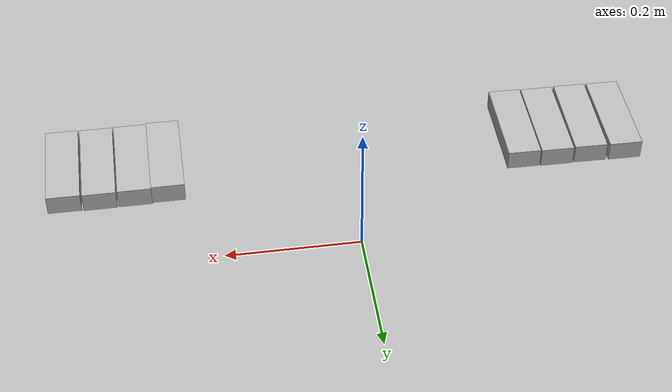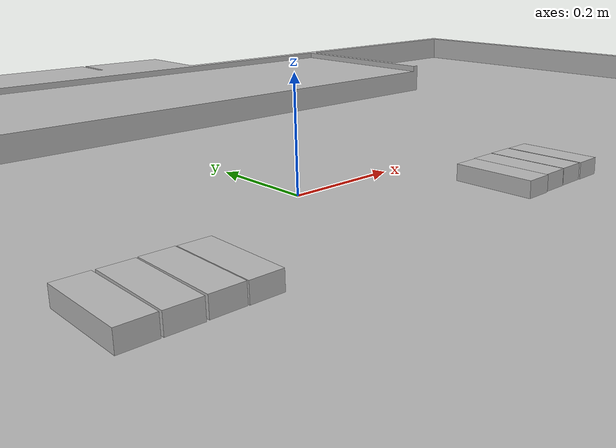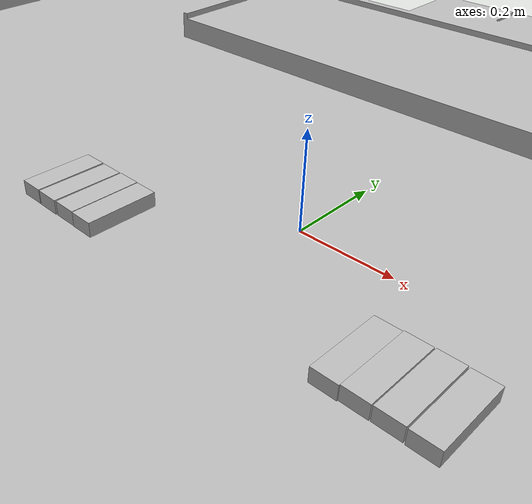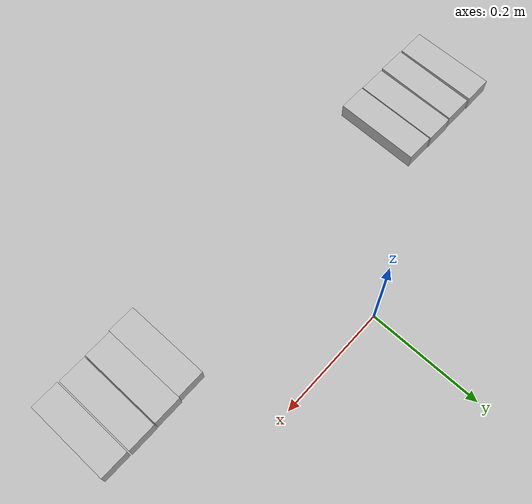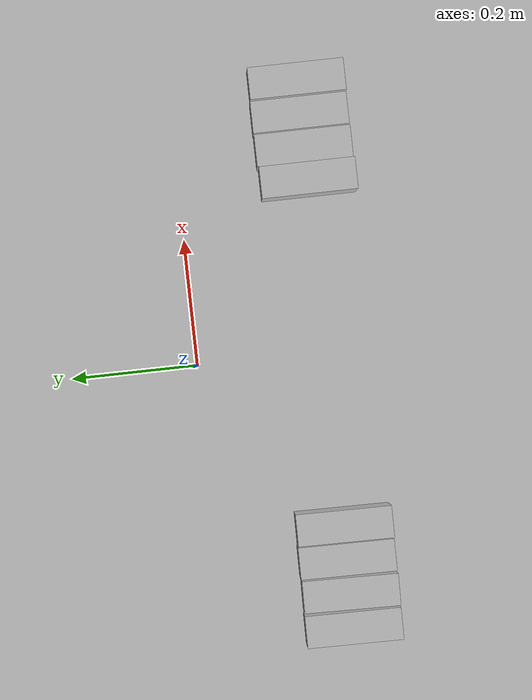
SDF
<sdf version='1.10'>
  <world name='empty'>
    <physics name='1ms' type='ignored'>
      <max_step_size>0.001</max_step_size>
      <real_time_factor>1</real_time_factor>
      <real_time_update_rate>1000</real_time_update_rate>
    </physics>
    <plugin name='gz::sim::systems::Physics' filename='gz-sim-physics-system'/>
    <plugin name='gz::sim::systems::UserCommands' filename='gz-sim-user-commands-system'/>
    <plugin name='gz::sim::systems::SceneBroadcaster' filename='gz-sim-scene-broadcaster-system'/>
    <plugin name='gz::sim::systems::Contact' filename='gz-sim-contact-system'/>
    <gravity>0 0 -9.8000000000000007</gravity>
    <magnetic_field>5.5644999999999998e-06 2.2875799999999999e-05 -4.2388400000000002e-05</magnetic_field>
    <atmosphere type='adiabatic'/>
    <scene>
      <ambient>0.400000006 0.400000006 0.400000006 1</ambient>
      <background>0.699999988 0.699999988 0.699999988 1</background>
      <shadows>true</shadows>
    </scene>
    <plugin name='gz::sim::systems::Physics' filename='gz-sim-physics-system'/>
    <plugin name='gz::sim::systems::Sensors' filename='gz-sim-sensors-system'/>
    <plugin name='gz::sim::systems::Imu' filename='gz-sim-imu-system'/>
    <plugin name='gz::sim::systems::UserCommands' filename='gz-sim-user-commands-system'/>
    <plugin name='gz::sim::systems::SceneBroadcaster' filename='gz-sim-scene-broadcaster-system'/>
    <plugin name='gz::sim::systems::MyPlugin' filename='libgz-match-plugin.so'/>
    <model name='Table_2024'>
      <static>true</static>
      <plugin name='gz::sim::systems::Label' filename='gz-sim-label-system'>
        <label>1</label>
      </plugin>
      <link name='link_0'>
        <gravity>false</gravity>
        <inertial>
          <inertia>
            <ixx>0.16666700000000001</ixx>
            <ixy>0</ixy>
            <ixz>0</ixz>
            <iyy>0.16666700000000001</iyy>
            <iyz>0</iyz>
            <izz>0.16666700000000001</izz>
          </inertia>
          <pose>0 0 0 0 0 0</pose>
          <mass>1</mass>
        </inertial>
        <pose>0 0 0 0 0 0</pose>
        <visual name='visual'>
          <pose>0 0 0 0 0 0</pose>
          <geometry>
            <mesh>
              <uri>file:///ezbot-v2/install/ezbot-v2-simulation/share/ezbot-v2-simulation/models/Table2026/table2026.dae</uri>
              <scale>1 1 1</scale>
            </mesh>
          </geometry>
          <transparency>0</transparency>
          <cast_shadows>true</cast_shadows>
        </visual>
        <collision name='collision'>
          <laser_retro>0</laser_retro>
          <max_contacts>10</max_contacts>
          <pose>0 0 0 0 0 0</pose>
          <geometry>
            <mesh>
              <uri>file:///ezbot-v2/install/ezbot-v2-simulation/share/ezbot-v2-simulation/models/Table2026/table2026.dae</uri>
              <scale>1 1 1</scale>
            </mesh>
          </geometry>
          <surface>
            <friction>
              <ode>
                <mu>1</mu>
                <mu2>1</mu2>
                <fdir1>0 0 0</fdir1>
                <slip1>0</slip1>
                <slip2>0</slip2>
              </ode>
              <torsional>
                <coefficient>1</coefficient>
                <patch_radius>0</patch_radius>
                <surface_radius>0</surface_radius>
                <use_patch_radius>true</use_patch_radius>
                <ode>
                  <slip>0</slip>
                </ode>
              </torsional>
            </friction>
            <contact>
              <collide_without_contact>false</collide_without_contact>
              <collide_without_contact_bitmask>1</collide_without_contact_bitmask>
              <collide_bitmask>1</collide_bitmask>
              <ode>
                <soft_cfm>0</soft_cfm>
                <soft_erp>0.20000000000000001</soft_erp>
                <kp>10000000000000</kp>
                <kd>1</kd>
                <max_vel>0.01</max_vel>
                <min_depth>0.01</min_depth>
              </ode>
              <bullet>
                <split_impulse>true</split_impulse>
                <split_impulse_penetration_threshold>-0.01</split_impulse_penetration_threshold>
                <soft_cfm>0</soft_cfm>
                <soft_erp>0.20000000000000001</soft_erp>
                <kp>10000000000000</kp>
                <kd>1</kd>
              </bullet>
            </contact>
          </surface>
        </collision>
        <enable_wind>false</enable_wind>
      </link>
      <pose>0 0 0 0 0 0</pose>
      <static>false</static>
      <allow_auto_disable>true</allow_auto_disable>
      <self_collide>false</self_collide>
    </model>
    <model name='Caisse_noisettes'>
      <static>false</static>
      <plugin name='gz::sim::systems::Label' filename='gz-sim-label-system'>
        <label>11</label>
      </plugin>
      <link name='link_0'>
        <gravity>true</gravity>
        <inertial>
          <pose>0 0 0.02 0 0 0</pose>
          <mass>0.025000000000000001</mass>
          <inertia>
            <ixx>2.5000000000000001e-05</ixx>
            <ixy>0</ixy>
            <ixz>0</ixz>
            <iyy>2.5000000000000001e-05</iyy>
            <iyz>0</iyz>
            <izz>7.9999999999999996e-06</izz>
          </inertia>
        </inertial>
        <pose>0 0 0 0 0 0</pose>
        <visual name='visual'>
          <pose>0 0 0 0 0 0</pose>
          <geometry>
            <mesh>
              <uri>file:///ezbot-v2/install/ezbot-v2-simulation/share/ezbot-v2-simulation/models/CaisseNoisette/CaisseNoisette.dae</uri>
              <scale>1 1 1</scale>
            </mesh>
          </geometry>
          <transparency>0</transparency>
          <cast_shadows>true</cast_shadows>
        </visual>
        <collision name='collision'>
          <laser_retro>0</laser_retro>
          <max_contacts>3</max_contacts>
          <pose>0 0 0.074999999999999997 0 0 0</pose>
          <geometry>
            <box>
              <size>0.050000000000000003 0.029999999999999999 0.14999999999999999</size>
            </box>
          </geometry>
          <surface>
            <friction>
              <ode>
                <mu>0.90000000000000002</mu>
                <mu2>0.90000000000000002</mu2>
              </ode>
            </friction>
            <contact>
              <ode>
                <soft_cfm>0</soft_cfm>
                <soft_erp>0.20000000000000001</soft_erp>
                <kp>10</kp>
                <kd>1000000000</kd>
                <max_vel>0.01</max_vel>
                <min_depth>0.001</min_depth>
              </ode>
            </contact>
            <bounce/>
          </surface>
        </collision>
        <enable_wind>false</enable_wind>
      </link>
      <pose>0.426732 -0.12676000000000001 0.014999999999999999 1.5708 1.0759000000000114e-19 1.9870999999999998e-17</pose>
      <allow_auto_disable>true</allow_auto_disable>
      <self_collide>false</self_collide>
    </model>
    <model name='Caisse_noisettes_1'>
      <static>false</static>
      <plugin name='gz::sim::systems::Label' filename='gz-sim-label-system'>
        <label>11</label>
      </plugin>
      <link name='link_0'>
        <gravity>true</gravity>
        <inertial>
          <pose>0 0 0.02 0 0 0</pose>
          <mass>0.025000000000000001</mass>
          <inertia>
            <ixx>2.5000000000000001e-05</ixx>
            <ixy>0</ixy>
            <ixz>0</ixz>
            <iyy>2.5000000000000001e-05</iyy>
            <iyz>0</iyz>
            <izz>7.9999999999999996e-06</izz>
          </inertia>
        </inertial>
        <pose>0 0 0 0 0 0</pose>
        <visual name='visual'>
          <pose>0 0 0 0 0 0</pose>
          <geometry>
            <mesh>
              <uri>file:///ezbot-v2/install/ezbot-v2-simulation/share/ezbot-v2-simulation/models/CaisseNoisette/CaisseNoisette.dae</uri>
              <scale>1 1 1</scale>
            </mesh>
          </geometry>
          <transparency>0</transparency>
          <cast_shadows>true</cast_shadows>
        </visual>
        <collision name='collision'>
          <laser_retro>0</laser_retro>
          <max_contacts>3</max_contacts>
          <pose>0 0 0.074999999999999997 0 0 0</pose>
          <geometry>
            <box>
              <size>0.050000000000000003 0.029999999999999999 0.14999999999999999</size>
            </box>
          </geometry>
          <surface>
            <friction>
              <ode>
                <mu>0.90000000000000002</mu>
                <mu2>0.90000000000000002</mu2>
              </ode>
            </friction>
            <contact>
              <ode>
                <soft_cfm>0</soft_cfm>
                <soft_erp>0.20000000000000001</soft_erp>
                <kp>10</kp>
                <kd>1000000000</kd>
                <max_vel>0.01</max_vel>
                <min_depth>0.001</min_depth>
              </ode>
            </contact>
            <bounce/>
          </surface>
        </collision>
        <enable_wind>false</enable_wind>
      </link>
      <pose>0.374052 -0.12575700000000001 0.014999999999999999 1.5708 -1.3772500000000209e-19 1.9665800000000002e-17</pose>
      <allow_auto_disable>true</allow_auto_disable>
      <self_collide>false</self_collide>
    </model>
    <model name='Caisse_noisettes_2'>
      <static>false</static>
      <plugin name='gz::sim::systems::Label' filename='gz-sim-label-system'>
        <label>11</label>
      </plugin>
      <link name='link_0'>
        <gravity>true</gravity>
        <inertial>
          <pose>0 0 0.02 0 0 0</pose>
          <mass>0.025000000000000001</mass>
          <inertia>
            <ixx>2.5000000000000001e-05</ixx>
            <ixy>0</ixy>
            <ixz>0</ixz>
            <iyy>2.5000000000000001e-05</iyy>
            <iyz>0</iyz>
            <izz>7.9999999999999996e-06</izz>
          </inertia>
        </inertial>
        <pose>0 0 0 0 0 0</pose>
        <visual name='visual'>
          <pose>0 0 0 0 0 0</pose>
          <geometry>
            <mesh>
              <uri>file:///ezbot-v2/install/ezbot-v2-simulation/share/ezbot-v2-simulation/models/CaisseNoisette/CaisseNoisette.dae</uri>
              <scale>1 1 1</scale>
            </mesh>
          </geometry>
          <transparency>0</transparency>
          <cast_shadows>true</cast_shadows>
        </visual>
        <collision name='collision'>
          <laser_retro>0</laser_retro>
          <max_contacts>3</max_contacts>
          <pose>0 0 0.074999999999999997 0 0 0</pose>
          <geometry>
            <box>
              <size>0.050000000000000003 0.029999999999999999 0.14999999999999999</size>
            </box>
          </geometry>
          <surface>
            <friction>
              <ode>
                <mu>0.90000000000000002</mu>
                <mu2>0.90000000000000002</mu2>
              </ode>
            </friction>
            <contact>
              <ode>
                <soft_cfm>0</soft_cfm>
                <soft_erp>0.20000000000000001</soft_erp>
                <kp>10</kp>
                <kd>1000000000</kd>
                <max_vel>0.01</max_vel>
                <min_depth>0.001</min_depth>
              </ode>
            </contact>
            <bounce/>
          </surface>
        </collision>
        <enable_wind>false</enable_wind>
      </link>
      <pose>-0.37543174232898396 -0.12555076203472337 0.014999985913140832 1.570796277143389 -2.9830807988726067e-08 -0.019598004272628446</pose>
      <allow_auto_disable>true</allow_auto_disable>
      <self_collide>false</self_collide>
    </model>
    <model name='Caisse_noisettes_3'>
      <static>false</static>
      <plugin name='gz::sim::systems::Label' filename='gz-sim-label-system'>
        <label>11</label>
      </plugin>
      <link name='link_0'>
        <gravity>true</gravity>
        <inertial>
          <pose>0 0 0.02 0 0 0</pose>
          <mass>0.025000000000000001</mass>
          <inertia>
            <ixx>2.5000000000000001e-05</ixx>
            <ixy>0</ixy>
            <ixz>0</ixz>
            <iyy>2.5000000000000001e-05</iyy>
            <iyz>0</iyz>
            <izz>7.9999999999999996e-06</izz>
          </inertia>
        </inertial>
        <pose>0 0 0 0 0 0</pose>
        <visual name='visual'>
          <pose>0 0 0 0 0 0</pose>
          <geometry>
            <mesh>
              <uri>file:///ezbot-v2/install/ezbot-v2-simulation/share/ezbot-v2-simulation/models/CaisseNoisette/CaisseNoisette.dae</uri>
              <scale>1 1 1</scale>
            </mesh>
          </geometry>
          <transparency>0</transparency>
          <cast_shadows>true</cast_shadows>
        </visual>
        <collision name='collision'>
          <laser_retro>0</laser_retro>
          <max_contacts>3</max_contacts>
          <pose>0 0 0.074999999999999997 0 0 0</pose>
          <geometry>
            <box>
              <size>0.050000000000000003 0.029999999999999999 0.14999999999999999</size>
            </box>
          </geometry>
          <surface>
            <friction>
              <ode>
                <mu>0.90000000000000002</mu>
                <mu2>0.90000000000000002</mu2>
              </ode>
            </friction>
            <contact>
              <ode>
                <soft_cfm>0</soft_cfm>
                <soft_erp>0.20000000000000001</soft_erp>
                <kp>10</kp>
                <kd>1000000000</kd>
                <max_vel>0.01</max_vel>
                <min_depth>0.001</min_depth>
              </ode>
            </contact>
            <bounce/>
          </surface>
        </collision>
        <enable_wind>false</enable_wind>
      </link>
      <pose>-0.27139600000000003 -0.126721 0.014999800000000001 1.5707899999999995 -1.4673700000014382e-06 -0.0090550600000000002</pose>
      <allow_auto_disable>true</allow_auto_disable>
      <self_collide>false</self_collide>
    </model>
    <model name='Caisse_noisettes_4'>
      <static>false</static>
      <plugin name='gz::sim::systems::Label' filename='gz-sim-label-system'>
        <label>11</label>
      </plugin>
      <link name='link_0'>
        <gravity>true</gravity>
        <inertial>
          <pose>0 0 0.02 0 0 0</pose>
          <mass>0.025000000000000001</mass>
          <inertia>
            <ixx>2.5000000000000001e-05</ixx>
            <ixy>0</ixy>
            <ixz>0</ixz>
            <iyy>2.5000000000000001e-05</iyy>
            <iyz>0</iyz>
            <izz>7.9999999999999996e-06</izz>
          </inertia>
        </inertial>
        <pose>0 0 0 0 0 0</pose>
        <visual name='visual'>
          <pose>0 0 0 0 0 0</pose>
          <geometry>
            <mesh>
              <uri>file:///ezbot-v2/install/ezbot-v2-simulation/share/ezbot-v2-simulation/models/CaisseNoisette/CaisseNoisette.dae</uri>
              <scale>1 1 1</scale>
            </mesh>
          </geometry>
          <transparency>0</transparency>
          <cast_shadows>true</cast_shadows>
        </visual>
        <collision name='collision'>
          <laser_retro>0</laser_retro>
          <max_contacts>3</max_contacts>
          <pose>0 0 0.074999999999999997 0 0 0</pose>
          <geometry>
            <box>
              <size>0.050000000000000003 0.029999999999999999 0.14999999999999999</size>
            </box>
          </geometry>
          <surface>
            <friction>
              <ode>
                <mu>0.90000000000000002</mu>
                <mu2>0.90000000000000002</mu2>
              </ode>
            </friction>
            <contact>
              <ode>
                <soft_cfm>0</soft_cfm>
                <soft_erp>0.20000000000000001</soft_erp>
                <kp>10</kp>
                <kd>1000000000</kd>
                <max_vel>0.01</max_vel>
                <min_depth>0.001</min_depth>
              </ode>
            </contact>
            <bounce/>
          </surface>
        </collision>
        <enable_wind>false</enable_wind>
      </link>
      <pose>0.32201000000000002 -0.12637699999999999 0.014999999999999999 -1.5708 -1.5378300109370109e-14 -3.1415899999999999</pose>
      <allow_auto_disable>true</allow_auto_disable>
      <self_collide>false</self_collide>
    </model>
    <model name='Caisse_noisettes_5'>
      <static>false</static>
      <plugin name='gz::sim::systems::Label' filename='gz-sim-label-system'>
        <label>11</label>
      </plugin>
      <link name='link_0'>
        <gravity>true</gravity>
        <inertial>
          <pose>0 0 0.02 0 0 0</pose>
          <mass>0.025000000000000001</mass>
          <inertia>
            <ixx>2.5000000000000001e-05</ixx>
            <ixy>0</ixy>
            <ixz>0</ixz>
            <iyy>2.5000000000000001e-05</iyy>
            <iyz>0</iyz>
            <izz>7.9999999999999996e-06</izz>
          </inertia>
        </inertial>
        <pose>0 0 0 0 0 0</pose>
        <visual name='visual'>
          <pose>0 0 0 0 0 0</pose>
          <geometry>
            <mesh>
              <uri>file:///ezbot-v2/install/ezbot-v2-simulation/share/ezbot-v2-simulation/models/CaisseNoisette/CaisseNoisette.dae</uri>
              <scale>1 1 1</scale>
            </mesh>
          </geometry>
          <transparency>0</transparency>
          <cast_shadows>true</cast_shadows>
        </visual>
        <collision name='collision'>
          <laser_retro>0</laser_retro>
          <max_contacts>3</max_contacts>
          <pose>0 0 0.074999999999999997 0 0 0</pose>
          <geometry>
            <box>
              <size>0.050000000000000003 0.029999999999999999 0.14999999999999999</size>
            </box>
          </geometry>
          <surface>
            <friction>
              <ode>
                <mu>0.90000000000000002</mu>
                <mu2>0.90000000000000002</mu2>
              </ode>
            </friction>
            <contact>
              <ode>
                <soft_cfm>0</soft_cfm>
                <soft_erp>0.20000000000000001</soft_erp>
                <kp>10</kp>
                <kd>1000000000</kd>
                <max_vel>0.01</max_vel>
                <min_depth>0.001</min_depth>
              </ode>
            </contact>
            <bounce/>
          </surface>
        </collision>
        <enable_wind>false</enable_wind>
      </link>
      <pose>0.27200999999999997 -0.12862499999999999 0.014999999999999999 -1.5708 1.4805500008020019e-14 3.1415899999999999</pose>
      <allow_auto_disable>true</allow_auto_disable>
      <self_collide>false</self_collide>
    </model>
    <model name='Caisse_noisettes_6'>
      <static>false</static>
      <plugin name='gz::sim::systems::Label' filename='gz-sim-label-system'>
        <label>11</label>
      </plugin>
      <link name='link_0'>
        <gravity>true</gravity>
        <inertial>
          <pose>0 0 0.02 0 0 0</pose>
          <mass>0.025000000000000001</mass>
          <inertia>
            <ixx>2.5000000000000001e-05</ixx>
            <ixy>0</ixy>
            <ixz>0</ixz>
            <iyy>2.5000000000000001e-05</iyy>
            <iyz>0</iyz>
            <izz>7.9999999999999996e-06</izz>
          </inertia>
        </inertial>
        <pose>0 0 0 0 0 0</pose>
        <visual name='visual'>
          <pose>0 0 0 0 0 0</pose>
          <geometry>
            <mesh>
              <uri>file:///ezbot-v2/install/ezbot-v2-simulation/share/ezbot-v2-simulation/models/CaisseNoisette/CaisseNoisette.dae</uri>
              <scale>1 1 1</scale>
            </mesh>
          </geometry>
          <transparency>0</transparency>
          <cast_shadows>true</cast_shadows>
        </visual>
        <collision name='collision'>
          <laser_retro>0</laser_retro>
          <max_contacts>3</max_contacts>
          <pose>0 0 0.074999999999999997 0 0 0</pose>
          <geometry>
            <box>
              <size>0.050000000000000003 0.029999999999999999 0.14999999999999999</size>
            </box>
          </geometry>
          <surface>
            <friction>
              <ode>
                <mu>0.90000000000000002</mu>
                <mu2>0.90000000000000002</mu2>
              </ode>
            </friction>
            <contact>
              <ode>
                <soft_cfm>0</soft_cfm>
                <soft_erp>0.20000000000000001</soft_erp>
                <kp>10</kp>
                <kd>1000000000</kd>
                <max_vel>0.01</max_vel>
                <min_depth>0.001</min_depth>
              </ode>
            </contact>
            <bounce/>
          </surface>
        </collision>
        <enable_wind>false</enable_wind>
      </link>
      <pose>-0.32297599999999999 -0.125308 0.014999999999999999 -1.5708 -1.1518000000206749e-07 3.1326700000000001</pose>
      <allow_auto_disable>true</allow_auto_disable>
      <self_collide>false</self_collide>
    </model>
    <model name='Caisse_noisettes_6_1'>
      <static>false</static>
      <plugin name='gz::sim::systems::Label' filename='gz-sim-label-system'>
        <label>11</label>
      </plugin>
      <link name='link_0'>
        <gravity>true</gravity>
        <inertial>
          <pose>0 0 0.02 0 0 0</pose>
          <mass>0.025000000000000001</mass>
          <inertia>
            <ixx>2.5000000000000001e-05</ixx>
            <ixy>0</ixy>
            <ixz>0</ixz>
            <iyy>2.5000000000000001e-05</iyy>
            <iyz>0</iyz>
            <izz>7.9999999999999996e-06</izz>
          </inertia>
        </inertial>
        <pose>0 0 0 0 0 0</pose>
        <visual name='visual'>
          <pose>0 0 0 0 0 0</pose>
          <geometry>
            <mesh>
              <uri>file:///ezbot-v2/install/ezbot-v2-simulation/share/ezbot-v2-simulation/models/CaisseNoisette/CaisseNoisette.dae</uri>
              <scale>1 1 1</scale>
            </mesh>
          </geometry>
          <transparency>0</transparency>
          <cast_shadows>true</cast_shadows>
        </visual>
        <collision name='collision'>
          <laser_retro>0</laser_retro>
          <max_contacts>3</max_contacts>
          <pose>0 0 0.074999999999999997 0 0 0</pose>
          <geometry>
            <box>
              <size>0.050000000000000003 0.029999999999999999 0.14999999999999999</size>
            </box>
          </geometry>
          <surface>
            <friction>
              <ode>
                <mu>0.90000000000000002</mu>
                <mu2>0.90000000000000002</mu2>
              </ode>
            </friction>
            <contact>
              <ode>
                <soft_cfm>0</soft_cfm>
                <soft_erp>0.20000000000000001</soft_erp>
                <kp>10</kp>
                <kd>1000000000</kd>
                <max_vel>0.01</max_vel>
                <min_depth>0.001</min_depth>
              </ode>
            </contact>
            <bounce/>
          </surface>
        </collision>
        <enable_wind>false</enable_wind>
      </link>
      <pose>-0.42987799999999998 -0.124317 0.014999999999999999 -1.5708 -8.774404813838288e-14 3.1321599999999998</pose>
      <allow_auto_disable>true</allow_auto_disable>
      <self_collide>false</self_collide>
    </model>
    <light name='sun' type='directional'>
      <pose>0 0 10 0 0 0</pose>
      <cast_shadows>true</cast_shadows>
      <intensity>1</intensity>
      <direction>-0.5 0.10000000000000001 -0.90000000000000002</direction>
      <diffuse>0.800000012 0.800000012 0.800000012 1</diffuse>
      <specular>0.200000003 0.200000003 0.200000003 1</specular>
      <attenuation>
        <range>1000</range>
        <linear>0.0099999997764825821</linear>
        <constant>0.89999997615814209</constant>
        <quadratic>0.0010000000474974513</quadratic>
      </attenuation>
      <spot>
        <inner_angle>0</inner_angle>
        <outer_angle>0</outer_angle>
        <falloff>0</falloff>
      </spot>
    </light>
  </world>
</sdf>
